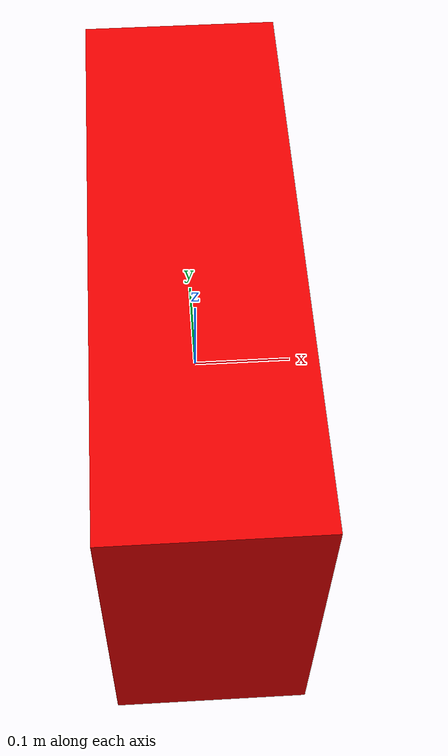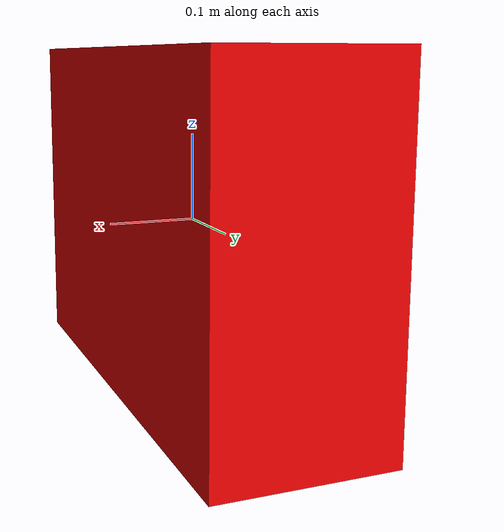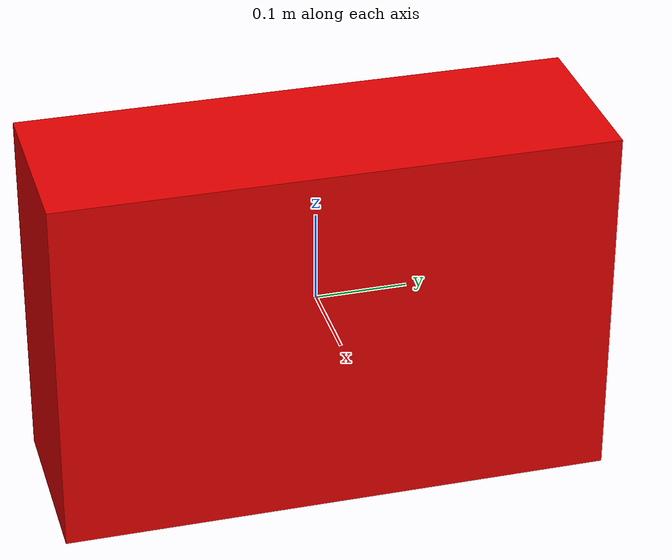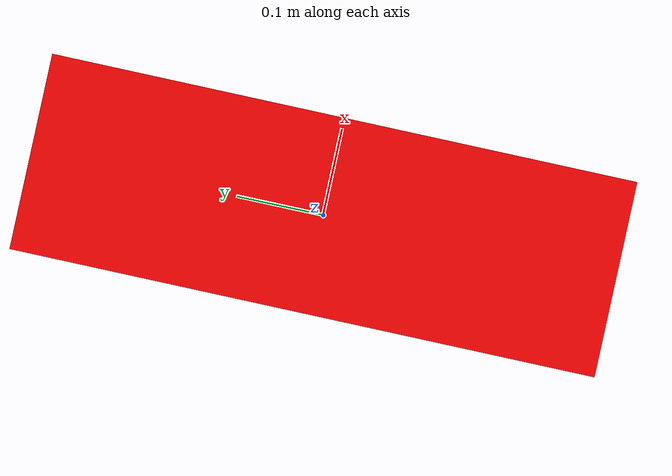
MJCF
<mujoco model="brick">

    <worldbody>
        <body name="brick">
            <!-- six DOF for movement and rotation in all directions-->
            <joint name="slide_x" type="slide" pos="0 0 0" axis="1 0 0" damping="1" />
            <joint name="slide_y" type="slide" pos="0 0 0" axis="0 1 0" damping="1" />
            <joint name="slide_z" type="slide" pos="0 0 0" axis="0 0 1" damping="1" />
            <joint name="hinge_x" type="hinge" pos="0 0 0" axis="1 0 0" damping="1" />
            <joint name="hinge_y" type="hinge" pos="0 0 0" axis="0 1 0" damping="1" />
            <joint name="hinge_z" type="hinge" pos="0 0 0" axis="0 0 1" damping="1" />
            <geom type="box" size=".1 .3 .2" rgba=".9 0 0 1" />
        </body>
    </worldbody>

    <actuator>
        <!-- actuation for paddle DOFs-->
        <motor name="motor_x" joint="slide_x" gear="1" ctrlrange="-10 10" ctrllimited="true" />
        <motor name="motor_y" joint="slide_y" gear="1" ctrlrange="-10 10" ctrllimited="true" />
        <motor name="motor_z" joint="slide_z" gear="1" ctrlrange="-10 10" ctrllimited="true" />
        <motor name="rot_x" joint="hinge_x" gear="1" ctrlrange="-10 10" ctrllimited="true" />
        <motor name="rot_y" joint="hinge_y" gear="1" ctrlrange="-10 10" ctrllimited="true" />
        <motor name="rot_z" joint="hinge_z" gear="1" ctrlrange="-10 10" ctrllimited="true" />
    </actuator>
</mujoco>
